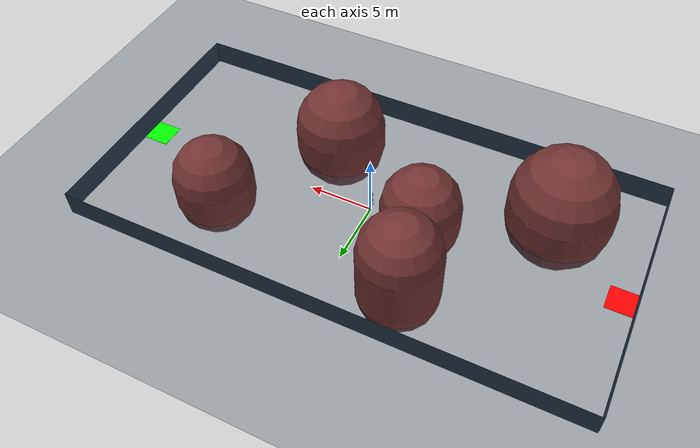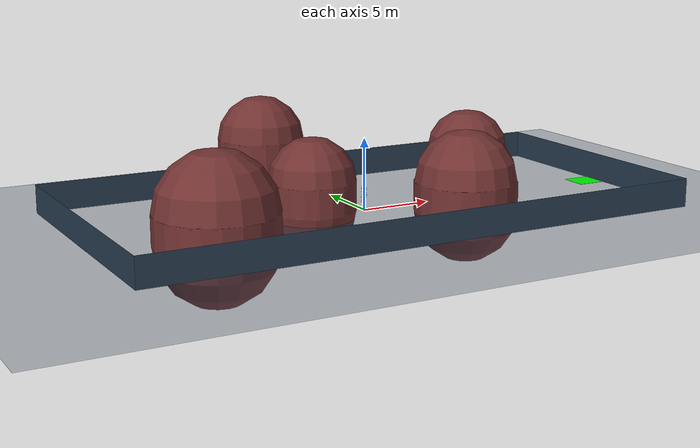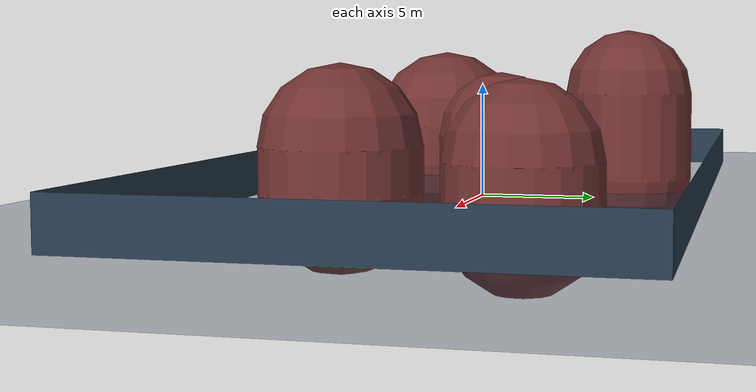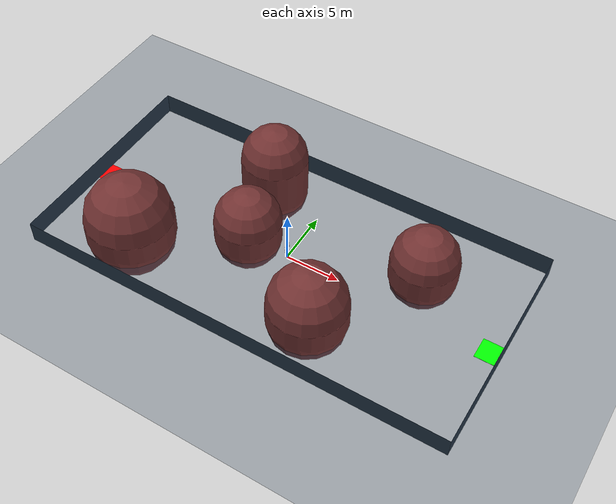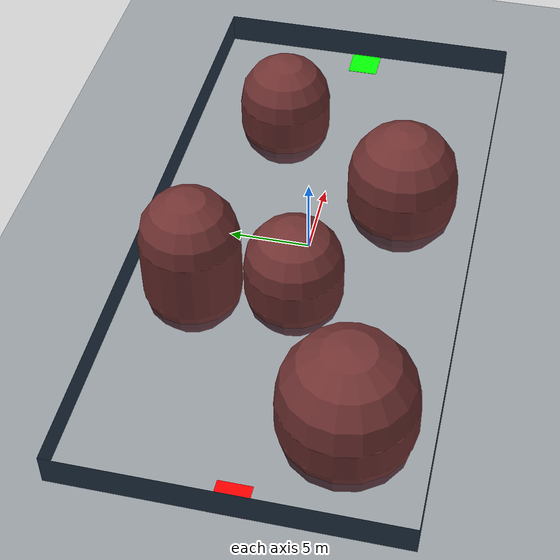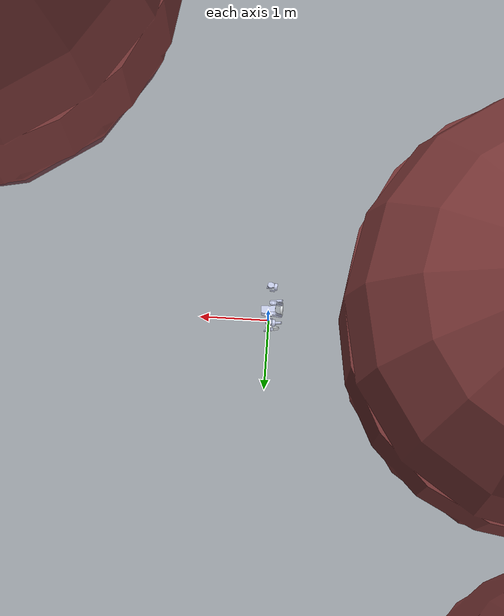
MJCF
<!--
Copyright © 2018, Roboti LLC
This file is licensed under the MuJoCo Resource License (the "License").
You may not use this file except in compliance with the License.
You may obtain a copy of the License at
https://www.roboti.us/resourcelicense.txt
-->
<mujoco>
    <compiler eulerseq = "zyx" angle="radian" inertiafromgeom = "false" meshdir="satyrr_wholebody/"/>

    <size njmax = "500" nconmax = "100" />
    <option integrator="RK4" timestep="0.001"/>

	<default>
		<geom contype = '0' conaffinity = '0'/>
		<default class = 'collision-default'>
			<geom contype = '1' user = '2'/>
			<default class = 'collision-group-a'>
				<geom contype = '2' conaffinity = '4'/>
			</default>
			<default class = 'collision-group-b'>
				<geom contype = '4' conaffinity = '2'/>
			</default>
		</default>
    </default>

    <asset>
        <texture name="texplane" type="2d" builtin="checker" rgb1=".2 .3 .4" rgb2=".1 0.15 0.2"
            width="512" height="512" mark="cross" markrgb=".8 .8 .8"/>
        <material name="matplane" reflectance="0.3" texture="texplane" texrepeat="1 1" texuniform="true"/>
        <!-- For Satyrr -->
        <mesh name="Torso" file="Torso.STL" />
        <mesh name="Thigh_R" file="Thigh_R.STL" />
        <mesh name="Shin_R" file="Shin_R.STL" />
        <mesh name="Wheel_R" file="Wheel_R.STL" />
        <mesh name="Thigh_L" file="Thigh_L.STL" />
        <mesh name="Shin_L" file="Shin_L.STL" />
        <mesh name="Wheel_L" file="Wheel_L.STL" />
        <mesh name="Shoulder_U_L" file="Shoulder_U_L.STL" />
        <mesh name="Shoulder_L" file="Shoulder_L.STL" />
        <mesh name="Arm_L" file="Arm_L.STL" />
        <mesh name="Shank_L" file="Shank_L.STL" />
        <mesh name="Shoulder_U_R" file="Shoulder_U_R.STL" />
        <mesh name="Shoulder_R" file="Shoulder_R.STL" />
        <mesh name="Arm_R" file="Arm_R.STL" />
        <mesh name="Shank_R" file="Shank_R.STL" />
    </asset>

    <worldbody>
        <light directional="true" diffuse=".4 .4 .4" specular="0.1 0.1 0.1" pos="0 0 5.0" dir="0 0 -1" castshadow="false"/>
        <light directional="true" diffuse=".6 .6 .6" specular="0.2 0.2 0.2" pos="0 0 4" dir="0 0 -1"/>

        <geom name="ground" type="plane" size="0 0 1" pos="0 0 0" quat="1 0 0 0" material="matplane" condim="1"/>

        <body name="wall1_body" pos="20 0 1">
            <geom name="wall1_geom" type="plane" size="10 1 1" pos="0 0 0" quat="0.5 0.5 0.5 0.5" material="matplane" condim="1"/>
        </body>
        <body name="wall2_body" pos="0 10 1">
            <geom name="wall2_geom" type="plane" size="20 1 1" pos="0 0 0" quat="0.7071 0.7071 0 0 " material="matplane" condim="1"/>
        </body>
        <body name="wall3_body" pos="-20 0 1">
            <geom name="wall3_geom" type="plane" size="10 1 1" pos="0 0 0" quat="0.5 0.5 0.5 0.5" material="matplane" condim="1"/>
        </body>
        <body name="wall4_body" pos="0 -10 1">
            <geom name="wall4_geom" type="plane" size="20 1 1" pos="0 0 0" quat="0.7071 0.7071 0 0 " material="matplane" condim="1"/>
        </body>

        <body name="start_location_body" pos="19 0 0">
            <geom name="start_location_geom" size="1 1 0.01" type="box" rgba="0 1 0 1" />
        </body>
        <body name="end_location_body" pos="-19 0 0">
            <geom name="end_location_geom" size="1 1 0.01" type="box" rgba="1 0 0 1" />
        </body>

        <body name="obstacle_1_body" pos="-4 0 0.5">
            <geom name="obstacle_1_geom" fromto="0 0 0 0 0 2" size="3.0" type="capsule" rgba="0.45 0.2 0.2 1" />
        </body>
        <body name="obstacle_2_body" pos="11 4 0.5">
            <geom name="obstacle_2_geom" fromto="0 0 0 0 0 2" size="3.0" type="capsule" rgba="0.45 0.2 0.2 1" />
        </body>
        <body name="obstacle_3_body" pos="5 -5 0.5">
            <geom name="obstacle_3_geom" fromto="0 0 0 0 0 2" size="3.5" type="capsule" rgba="0.45 0.2 0.2 1" />
        </body>
        <body name="obstacle_4_body" pos="-13 -5 0.5">
            <geom name="obstacle_4_geom" fromto="0 0 0 0 0 2" size="4.0" type="capsule" rgba="0.45 0.2 0.2 1" />
        </body>
        <body name="obstacle_5_body" pos="-5 6 0.5">
            <geom name="obstacle_5_geom" fromto="0 0 0 0 0 4" size="3.0" type="capsule" rgba="0.45 0.2 0.2 1" />
        </body>

        <!-- Satyrr -->
        <body name="torso" pos="0 0.0 0.4869">
            <joint armature="0" damping="0" limited="false" name="robot" pos="0 0 0.0" stiffness="0" type="free"/>
            <geom friction="0.9" type="mesh" rgba="0.79216 0.81961 0.93333 1" mesh="Torso" mass="4.05" />

            <body name="Thigh_R" pos="-0.06625 0 0.36">
                <inertial pos="0 -0.080175 -0.0380315" quat="0.707107 0 0 0.707107" mass="0.904864" diaginertia="0.00325713 0.00280128 0.000871858" />
                <joint name="Hip_R" pos="0 0 0" axis="0 -1 0" />
                <geom type="mesh" rgba="0.792157 0.819608 0.933333 1" mesh="Thigh_R" />
                <body name="Shin_R" pos="0 -0.080175 -0.15">
                    <inertial pos="0 0 -0.0789246" quat="0.707107 0 0 0.707107" mass="0.394882" diaginertia="0.00112813 0.00112607 0.000173116" />
                    <joint name="Knee_R" pos="0 0 0" axis="0 -1 0" />
                    <geom type="mesh" rgba="0.792157 0.819608 0.933333 1" mesh="Shin_R" />
                    <body name="Wheel_R" pos="0 0 -0.15" quat="0.707107 0 0 -0.707107">
                        <inertial pos="0.0356257 0 0" mass="0.52599" diaginertia="0.000948894 0.000489944 0.000489944" />
                        <joint name="Ankle_R" pos="0 0 0" axis="1 0 0" />
                        <geom type="mesh" rgba="0.898039 0.917647 0.929412 1" mesh="Wheel_R" />
                    </body>
                </body>
            </body>
            <body name="Thigh_L" pos="-0.06625 0 0.36">
                <inertial pos="0 0.080175 -0.0380315" quat="0.707107 0 0 0.707107" mass="0.904864" diaginertia="0.00325713 0.00280128 0.000871858" />
                <joint name="Hip_L" pos="0 0 0" axis="0 -1 0" />
                <geom type="mesh" rgba="0.792157 0.819608 0.933333 1" mesh="Thigh_L" />
                <body name="Shin_L" pos="0 0.080175 -0.15">
                    <inertial pos="0 0 -0.0789246" quat="0.707107 0 0 0.707107" mass="0.394882" diaginertia="0.00112813 0.00112607 0.000173116" />
                    <joint name="Knee_L" pos="0 0 0" axis="0 -1 0" />
                    <geom type="mesh" rgba="0.792157 0.819608 0.933333 1" mesh="Shin_L" />
                    <body name="Wheel_L" pos="0 0 -0.15">
                        <inertial pos="0 0.0363743 0" quat="0.707107 0 0 0.707107" mass="0.52599" diaginertia="0.000948894 0.000489944 0.000489944" />
                        <joint name="Ankle_L" pos="0 0 0" axis="0 -1 0" />
                        <geom type="mesh" rgba="0.898039 0.917647 0.929412 1" mesh="Wheel_L" />
                    </body>
                </body>
            </body>
            <body name="Shoulder_U_L" pos="-0.06625 0.13274 0.48068">
                <inertial pos="5.98242e-08 -3.82379e-09 0.0467603" quat="0.5 0.5 0.5 0.5" mass="0.246892" diaginertia="0.0012863 0.00103844 0.00030284" />
                <geom type="mesh" rgba="0.792157 0.819608 0.933333 1" mesh="Shoulder_U_L" />
                <body name="Shoulder_L" pos="0 0 0.114214">
                    <inertial pos="-7.6505e-09 4.57848e-09 2.98572e-10" quat="0.500001 0.499999 0.499999 0.500001" mass="0.225611" diaginertia="0.000280653 0.000166998 0.000150663" />
                    <geom type="mesh" rgba="0.792157 0.819608 0.933333 1" mesh="Shoulder_L" />
                    <body name="Arm_L" pos="0 0 0">
                        <inertial pos="0 0.0494924 -0.061196" quat="0.707074 0.00680441 -0.00680441 0.707074" mass="0.584971" diaginertia="0.00283895 0.00259254 0.000369078" />
                        <geom type="mesh" rgba="0.792157 0.819608 0.933333 1" mesh="Arm_L" />
                        <body name="Shank_L" pos="0 0.05082 -0.204">
                            <inertial pos="9.76797e-09 0 -0.0687371" quat="0.707107 0 0 0.707107" mass="0.111225" diaginertia="0.000216628 0.00021518 1.39816e-05" />
                            <geom type="mesh" rgba="0.792157 0.819608 0.933333 1" mesh="Shank_L" />
                        </body>
                    </body>
                </body>
            </body>
            <body name="Shoulder_U_R" pos="-0.06625 -0.13274 0.48068">
                <inertial pos="5.98242e-08 -3.82379e-09 0.0467603" quat="0.5 0.5 0.5 0.5" mass="0.246892" diaginertia="0.0012863 0.00103844 0.00030284" />
                <geom type="mesh" rgba="0.792157 0.819608 0.933333 1" mesh="Shoulder_U_R" />
                <body name="Shoulder_R" pos="0 0 0.114214">
                    <inertial pos="-7.6505e-09 4.57848e-09 2.98572e-10" quat="0.500001 0.499999 0.499999 0.500001" mass="0.225611" diaginertia="0.000280653 0.000166998 0.000150663" />
                    <geom type="mesh" rgba="0.792157 0.819608 0.933333 1" mesh="Shoulder_R" />
                    <body name="Arm_R" pos="0 0 0">
                        <inertial pos="0 -0.0494924 -0.061196" quat="0.707074 -0.00680441 0.00680441 0.707074" mass="0.584971" diaginertia="0.00283895 0.00259254 0.000369078" />
                        <geom type="mesh" rgba="0.792157 0.819608 0.933333 1" mesh="Arm_R" />
                        <body name="Shank_R" pos="0 -0.05082 -0.204">
                            <inertial pos="-9.76797e-09 0 -0.0687371" quat="0.707107 0 0 0.707107" mass="0.111225" diaginertia="0.000216628 0.00021518 1.39816e-05" />
                            <geom type="mesh" rgba="0.792157 0.819608 0.933333 1" mesh="Shank_R" />
                        </body>
                    </body>
                </body>
            </body>
        </body>
    </worldbody>

    <actuator>
        <motor ctrllimited="true" ctrlrange="-100.0 100.0" gear="1" joint="Hip_L"/>
        <motor ctrllimited="true" ctrlrange="-100.0 100.0" gear="1" joint="Knee_L"/>
        <motor ctrllimited="true" ctrlrange="-100.0 100.0" gear="1" joint="Ankle_L"/>
        <motor ctrllimited="true" ctrlrange="-100.0 100.0" gear="1" joint="Hip_R"/>
        <motor ctrllimited="true" ctrlrange="-100.0 100.0" gear="1" joint="Knee_R"/>
        <motor ctrllimited="true" ctrlrange="-100.0 100.0" gear="1" joint="Ankle_R"/>
    </actuator>
</mujoco>
